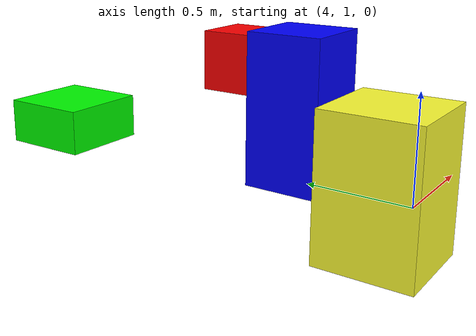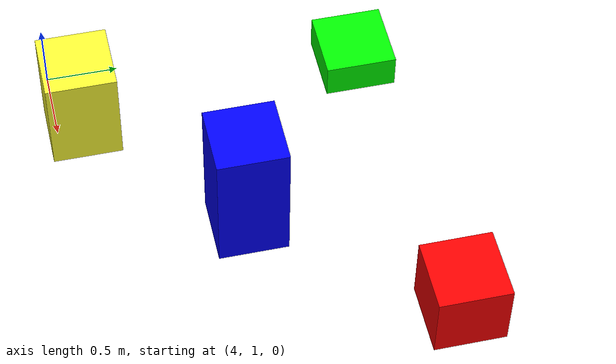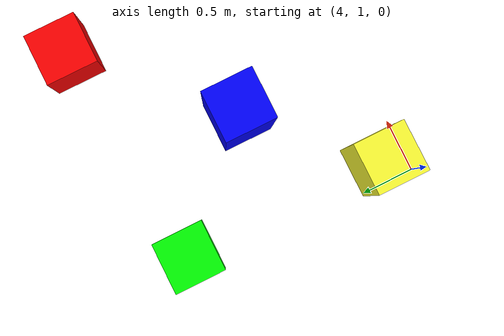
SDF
<sdf version="1.5">
 <world name="default">
  <include><uri>model://sun</uri></include>
  <include><uri>model://Green_box_25</uri><name>Green_box_25_0</name><pose>4.2 3.2 0.0 0 0 0</pose></include>
  <include><uri>model://Red_box_50</uri><name>Red_box_50_1</name><pose>6.4 3.4 0.0 0 0 0</pose></include>
  <include><uri>model://Yellow_box_75</uri><name>Yellow_box_75_2</name><pose>4.2 1.2 0.0 0 0 0</pose></include>
  <include><uri>model://Blue_box_100</uri><name>Blue_box_100_3</name><pose>5.2 2.2 0.0 0 0 0</pose></include>
  <scene>
   <ambient>0.8 0.8 0.8 1</ambient>
   <background>0.8 0.9 1 1</background>
   <shadows>false</shadows>
   <grid>false</grid>
   <origin_visual>false</origin_visual>
  </scene>
  <physics name="default_physics" default="0" type="ode">
   <gravity>0 0 -9.8066</gravity>
   <ode>
    <solver>
     <type>quick</type>
     <iters>10</iters>
     <sor>1.3</sor>
     <use_dynamic_moi_rescaling>0</use_dynamic_moi_rescaling>
    </solver>
    <constraints>
     <cfm>0</cfm>
     <erp>0.2</erp>
     <contact_max_correcting_vel>100</contact_max_correcting_vel>
     <contact_surface_layer>0.001</contact_surface_layer>
    </constraints>
   </ode>
   <max_step_size>0.004</max_step_size>
   <real_time_factor>1</real_time_factor>
   <real_time_update_rate>250</real_time_update_rate>
   <magnetic_field>6.0e-6 2.3e-5 -4.2e-5</magnetic_field>
  </physics>
 </world>
</sdf>

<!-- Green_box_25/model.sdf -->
<sdf version='1.7'>
  <model name='Green_Box_25'>
    <link name='link_0'>
      <inertial>
        <mass>1</mass>
        <inertia>
          <ixx>0.166667</ixx>
          <ixy>0</ixy>
          <ixz>0</ixz>
          <iyy>0.166667</iyy>
          <iyz>0</iyz>
          <izz>0.166667</izz>
        </inertia>
        <pose>0 0 0 0 -0 0</pose>
      </inertial>
      <pose>0 0 0 0 -0 0</pose>
      <gravity>1</gravity>
      <self_collide>0</self_collide>
      <kinematic>0</kinematic>
      <enable_wind>0</enable_wind>
      <visual name='visual'>
        <pose>0 0 0 0 -0 0</pose>
        <geometry>
          <box>
            <size>0.5 0.5 0.25</size>
          </box>
        </geometry>
        <material>
          <lighting>1</lighting>
          <script>
            <uri>file://media/materials/scripts/gazebo.material</uri>
            <name>Gazebo/Grey</name>
          </script>
          <shader type='pixel'>
            <normal_map>__default__</normal_map>
          </shader>
          <ambient>0 1 0 1</ambient>
          <diffuse>0 1 0 1</diffuse>
          <specular>0 1 0 1</specular>
          <emissive>0 0 0 1</emissive>
        </material>
        <transparency>0</transparency>
        <cast_shadows>1</cast_shadows>
      </visual>
      <collision name='collision'>
        <laser_retro>0</laser_retro>
        <max_contacts>10</max_contacts>
        <pose>0 0 0 0 -0 0</pose>
        <geometry>
          <box>
            <size>0.5 0.5 0.25</size>
          </box>
        </geometry>
        <surface>
          <friction>
            <ode>
              <mu>1</mu>
              <mu2>1</mu2>
              <fdir1>0 0 0</fdir1>
              <slip1>0</slip1>
              <slip2>0</slip2>
            </ode>
            <torsional>
              <coefficient>1</coefficient>
              <patch_radius>0</patch_radius>
              <surface_radius>0</surface_radius>
              <use_patch_radius>1</use_patch_radius>
              <ode>
                <slip>0</slip>
              </ode>
            </torsional>
          </friction>
          <bounce>
            <restitution_coefficient>0</restitution_coefficient>
            <threshold>1e+06</threshold>
          </bounce>
          <contact>
            <collide_without_contact>0</collide_without_contact>
            <collide_without_contact_bitmask>1</collide_without_contact_bitmask>
            <collide_bitmask>1</collide_bitmask>
            <ode>
              <soft_cfm>0</soft_cfm>
              <soft_erp>0.2</soft_erp>
              <kp>1e+13</kp>
              <kd>1</kd>
              <max_vel>0.01</max_vel>
              <min_depth>0</min_depth>
            </ode>
            <bullet>
              <split_impulse>1</split_impulse>
              <split_impulse_penetration_threshold>-0.01</split_impulse_penetration_threshold>
              <soft_cfm>0</soft_cfm>
              <soft_erp>0.2</soft_erp>
              <kp>1e+13</kp>
              <kd>1</kd>
            </bullet>
          </contact>
        </surface>
      </collision>
    </link>
    <static>0</static>
    <allow_auto_disable>1</allow_auto_disable>
  </model>
</sdf>

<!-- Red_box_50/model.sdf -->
<sdf version='1.7'>
  <model name='Red_box_50'>
    <link name='link_0'>
      <inertial>
        <mass>1</mass>
        <inertia>
          <ixx>0.166667</ixx>
          <ixy>0</ixy>
          <ixz>0</ixz>
          <iyy>0.166667</iyy>
          <iyz>0</iyz>
          <izz>0.166667</izz>
        </inertia>
        <pose>0 0 0 0 -0 0</pose>
      </inertial>
      <pose>0 0 0 0 -0 0</pose>
      <gravity>1</gravity>
      <self_collide>0</self_collide>
      <kinematic>0</kinematic>
      <enable_wind>0</enable_wind>
      <visual name='visual'>
        <pose>0 0 0 0 -0 0</pose>
        <geometry>
          <box>
            <size>0.5 0.5 0.5</size>
          </box>
        </geometry>
        <material>
          <lighting>1</lighting>
          <script>
            <uri>file://media/materials/scripts/gazebo.material</uri>
            <name>Gazebo/Grey</name>
          </script>
          <shader type='pixel'>
            <normal_map>__default__</normal_map>
          </shader>
          <ambient>1 0 0 1</ambient>
          <diffuse>1 0 0 1</diffuse>
          <specular>1 0 0 1</specular>
          <emissive>0 0 0 1</emissive>
        </material>
        <transparency>0</transparency>
        <cast_shadows>1</cast_shadows>
      </visual>
      <collision name='collision'>
        <laser_retro>0</laser_retro>
        <max_contacts>10</max_contacts>
        <pose>0 0 0 0 -0 0</pose>
        <geometry>
          <box>
            <size>0.5 0.5 0.5</size>
          </box>
        </geometry>
        <surface>
          <friction>
            <ode>
              <mu>1</mu>
              <mu2>1</mu2>
              <fdir1>0 0 0</fdir1>
              <slip1>0</slip1>
              <slip2>0</slip2>
            </ode>
            <torsional>
              <coefficient>1</coefficient>
              <patch_radius>0</patch_radius>
              <surface_radius>0</surface_radius>
              <use_patch_radius>1</use_patch_radius>
              <ode>
                <slip>0</slip>
              </ode>
            </torsional>
          </friction>
          <bounce>
            <restitution_coefficient>0</restitution_coefficient>
            <threshold>1e+06</threshold>
          </bounce>
          <contact>
            <collide_without_contact>0</collide_without_contact>
            <collide_without_contact_bitmask>1</collide_without_contact_bitmask>
            <collide_bitmask>1</collide_bitmask>
            <ode>
              <soft_cfm>0</soft_cfm>
              <soft_erp>0.2</soft_erp>
              <kp>1e+13</kp>
              <kd>1</kd>
              <max_vel>0.01</max_vel>
              <min_depth>0</min_depth>
            </ode>
            <bullet>
              <split_impulse>1</split_impulse>
              <split_impulse_penetration_threshold>-0.01</split_impulse_penetration_threshold>
              <soft_cfm>0</soft_cfm>
              <soft_erp>0.2</soft_erp>
              <kp>1e+13</kp>
              <kd>1</kd>
            </bullet>
          </contact>
        </surface>
      </collision>
    </link>
    <static>0</static>
    <allow_auto_disable>1</allow_auto_disable>
  </model>
</sdf>

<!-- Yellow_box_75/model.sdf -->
<sdf version='1.7'>
  <model name='Yellow_box_75'>
    <link name='link_0'>
      <inertial>
        <mass>1</mass>
        <inertia>
          <ixx>0.166667</ixx>
          <ixy>0</ixy>
          <ixz>0</ixz>
          <iyy>0.166667</iyy>
          <iyz>0</iyz>
          <izz>0.166667</izz>
        </inertia>
        <pose>0 0 0 0 -0 0</pose>
      </inertial>
      <pose>0 0 0 0 -0 0</pose>
      <gravity>1</gravity>
      <self_collide>0</self_collide>
      <kinematic>0</kinematic>
      <enable_wind>0</enable_wind>
      <visual name='visual'>
        <pose>0 0 0 0 -0 0</pose>
        <geometry>
          <box>
            <size>0.5 0.5 0.75</size>
          </box>
        </geometry>
        <material>
          <lighting>1</lighting>
          <script>
            <uri>file://media/materials/scripts/gazebo.material</uri>
            <name>Gazebo/Grey</name>
          </script>
          <shader type='pixel'>
            <normal_map>__default__</normal_map>
          </shader>
          <ambient>1 1 0.2 1</ambient>
          <diffuse>1 1 0.2 1</diffuse>
          <specular>1 1 0.2 1</specular>
          <emissive>0 0 0 1</emissive>
        </material>
        <transparency>0</transparency>
        <cast_shadows>1</cast_shadows>
      </visual>
      <collision name='collision'>
        <laser_retro>0</laser_retro>
        <max_contacts>10</max_contacts>
        <pose>0 0 0 0 -0 0</pose>
        <geometry>
          <box>
            <size>0.5 0.5 0.75</size>
          </box>
        </geometry>
        <surface>
          <friction>
            <ode>
              <mu>1</mu>
              <mu2>1</mu2>
              <fdir1>0 0 0</fdir1>
              <slip1>0</slip1>
              <slip2>0</slip2>
            </ode>
            <torsional>
              <coefficient>1</coefficient>
              <patch_radius>0</patch_radius>
              <surface_radius>0</surface_radius>
              <use_patch_radius>1</use_patch_radius>
              <ode>
                <slip>0</slip>
              </ode>
            </torsional>
          </friction>
          <bounce>
            <restitution_coefficient>0</restitution_coefficient>
            <threshold>1e+06</threshold>
          </bounce>
          <contact>
            <collide_without_contact>0</collide_without_contact>
            <collide_without_contact_bitmask>1</collide_without_contact_bitmask>
            <collide_bitmask>1</collide_bitmask>
            <ode>
              <soft_cfm>0</soft_cfm>
              <soft_erp>0.2</soft_erp>
              <kp>1e+13</kp>
              <kd>1</kd>
              <max_vel>0.01</max_vel>
              <min_depth>0</min_depth>
            </ode>
            <bullet>
              <split_impulse>1</split_impulse>
              <split_impulse_penetration_threshold>-0.01</split_impulse_penetration_threshold>
              <soft_cfm>0</soft_cfm>
              <soft_erp>0.2</soft_erp>
              <kp>1e+13</kp>
              <kd>1</kd>
            </bullet>
          </contact>
        </surface>
      </collision>
    </link>
    <static>0</static>
    <allow_auto_disable>1</allow_auto_disable>
  </model>
</sdf>

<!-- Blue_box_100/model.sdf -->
<sdf version='1.7'>
  <model name='Blue_box_100'>
    <link name='link_0'>
      <inertial>
        <mass>1</mass>
        <inertia>
          <ixx>0.166667</ixx>
          <ixy>0</ixy>
          <ixz>0</ixz>
          <iyy>0.166667</iyy>
          <iyz>0</iyz>
          <izz>0.166667</izz>
        </inertia>
        <pose>0 0 0 0 -0 0</pose>
      </inertial>
      <pose>0 -0 0 0 -0 0</pose>
      <gravity>1</gravity>
      <self_collide>0</self_collide>
      <kinematic>0</kinematic>
      <enable_wind>0</enable_wind>
      <visual name='visual'>
        <pose>0 0 0 0 -0 0</pose>
        <geometry>
          <box>
            <size>0.5 0.5 1</size>
          </box>
        </geometry>
        <material>
          <lighting>1</lighting>
          <script>
            <uri>file://media/materials/scripts/gazebo.material</uri>
            <name>Gazebo/Grey</name>
          </script>
          <shader type='pixel'>
            <normal_map>__default__</normal_map>
          </shader>
          <ambient>0 0 1 1</ambient>
          <diffuse>0 0 1 1</diffuse>
          <specular>0 0 1 1</specular>
          <emissive>0 0 0 1</emissive>
        </material>
        <transparency>0</transparency>
        <cast_shadows>1</cast_shadows>
      </visual>
      <collision name='collision'>
        <laser_retro>0</laser_retro>
        <max_contacts>10</max_contacts>
        <pose>0 0 0 0 -0 0</pose>
        <geometry>
          <box>
            <size>0.5 0.5 1</size>
          </box>
        </geometry>
        <surface>
          <friction>
            <ode>
              <mu>1</mu>
              <mu2>1</mu2>
              <fdir1>0 0 0</fdir1>
              <slip1>0</slip1>
              <slip2>0</slip2>
            </ode>
            <torsional>
              <coefficient>1</coefficient>
              <patch_radius>0</patch_radius>
              <surface_radius>0</surface_radius>
              <use_patch_radius>1</use_patch_radius>
              <ode>
                <slip>0</slip>
              </ode>
            </torsional>
          </friction>
          <bounce>
            <restitution_coefficient>0</restitution_coefficient>
            <threshold>1e+06</threshold>
          </bounce>
          <contact>
            <collide_without_contact>0</collide_without_contact>
            <collide_without_contact_bitmask>1</collide_without_contact_bitmask>
            <collide_bitmask>1</collide_bitmask>
            <ode>
              <soft_cfm>0</soft_cfm>
              <soft_erp>0.2</soft_erp>
              <kp>1e+13</kp>
              <kd>1</kd>
              <max_vel>0.01</max_vel>
              <min_depth>0</min_depth>
            </ode>
            <bullet>
              <split_impulse>1</split_impulse>
              <split_impulse_penetration_threshold>-0.01</split_impulse_penetration_threshold>
              <soft_cfm>0</soft_cfm>
              <soft_erp>0.2</soft_erp>
              <kp>1e+13</kp>
              <kd>1</kd>
            </bullet>
          </contact>
        </surface>
      </collision>
    </link>
    <static>0</static>
    <allow_auto_disable>1</allow_auto_disable>
  </model>
</sdf>
